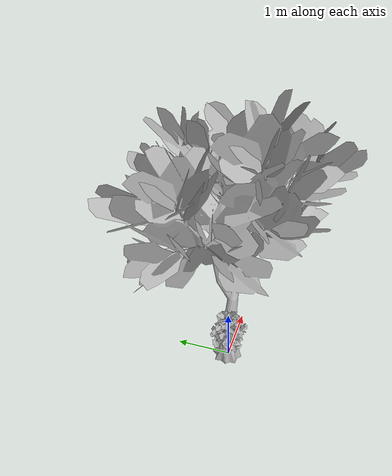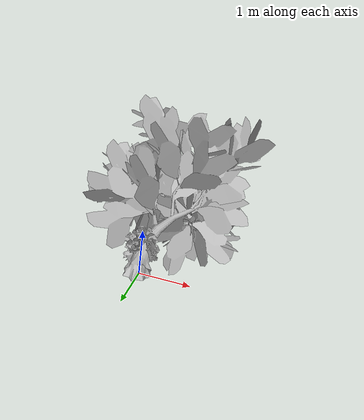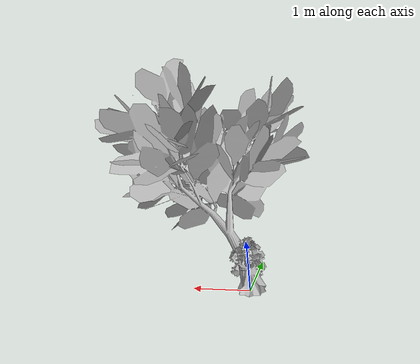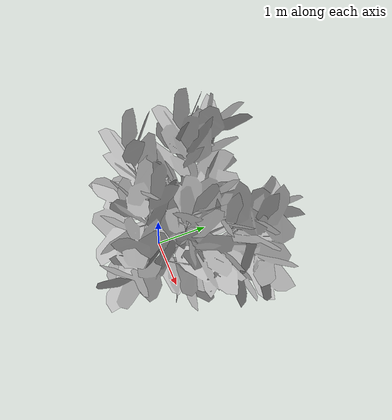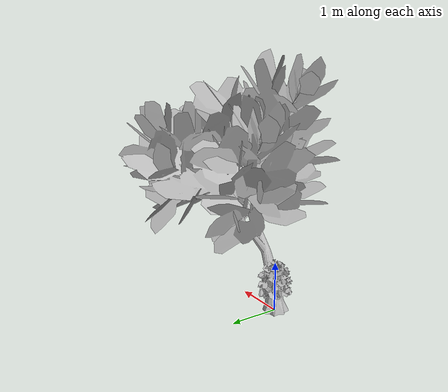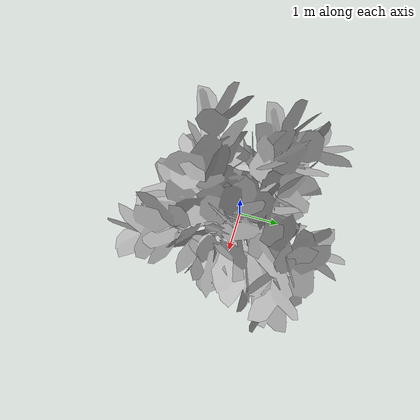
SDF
<?xml version="1.0" ?>
<sdf version="1.6">
  <model name="hill_top_tree">
    <static>true</static>
    <link name="link">
      <visual name="visual">
        <geometry>
          <mesh>
            <uri>model://hill_top_tree/Untitled.obj</uri>
            <scale>0.009004 0.009004 0.009004</scale>
          </mesh>
        </geometry>
      </visual>
                  <collision name="collision">
        <geometry>
          <mesh>
            <uri>model://hill_top_tree/Untitled.obj</uri>
            <scale>0.009004 0.009004 0.009004</scale>
          </mesh>
        </geometry>
      </collision>
    </link>
  </model>
</sdf>
